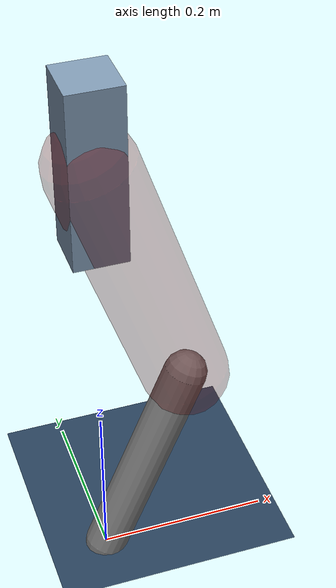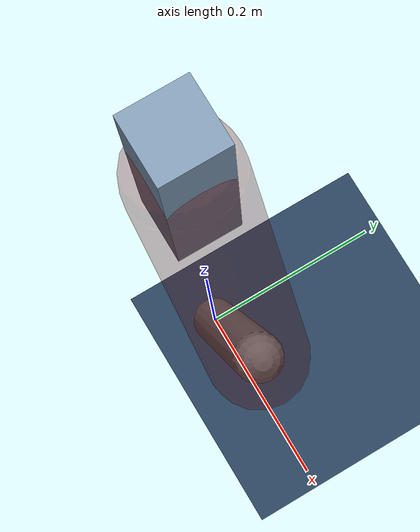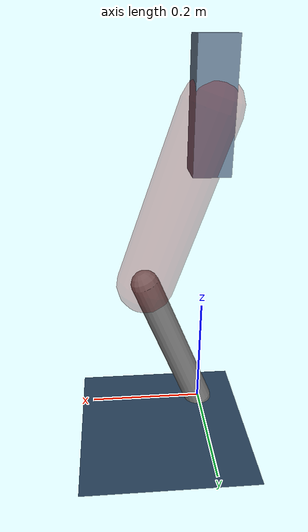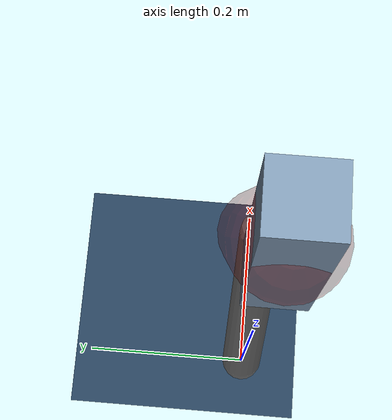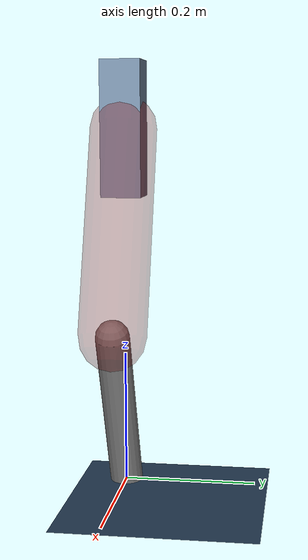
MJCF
<mujoco model="Hopper2D">
	<compiler inertiafromgeom="true" angle="radian" />
	<option timestep="0.001" integrator="implicit" cone="elliptic" solver="Newton" tolerance="1e-10" />

	<default>
		<geom contype="1" conaffinity="1" condim="3" friction="2 0.005 0.0001" solref="0.005 1" />
		<joint limited="true" damping="0.1" />
	</default>

	<asset>
		<texture name="skybox" type="skybox" builtin="gradient" rgb1=".4 .6 .8" rgb2="0 0 0" width="800" height="800" />
		<texture name="grid" type="2d" builtin="checker" rgb1=".1 .2 .3" rgb2=".2 .3 .4" width="300" height="300" mark="edge" markrgb=".2 .3 .4" />
		<material name="ground" texture="grid" texrepeat="1 1" texuniform="true" reflectance="0.1" />
		<material name="leg" rgba="0.5 0.6 0.7 1" />
	</asset>

	<worldbody>

		<geom name="floor" type="plane" size="5 5 0.25" material="ground" />

		<light directional="false" diffuse="0.8 0.8 0.8" specular="0.3 0.3 0.3" pos="0 0 2" dir="0 0 -1" />
		<light mode="targetbodycom" target="base" directional="false" diffuse="0.8 0.8 0.8" specular="0.3 0.3 0.3" pos="0 0 2" dir="0 0 -1" />

		<camera name="fixed" pos="0 -2 1" xyaxes="1 0 0 0 0 1" />
		<camera name="tracking" mode="trackcom" pos="0 -3 1" />

		<body name="root" pos="0 0 0.5414868881823411">
			<joint name="slide_x" type="slide" axis="1 0 0" range="-100 100" />
			<joint name="slide_z" type="slide" axis="0 0 1" range="0 10" />

			<body name="base" pos="0 0 0">
				<geom name="torso" type="box" size="0.03 0.03 0.1" mass="2.807" material="leg" />

				<body name="link1" pos="0 0 0" euler="0 1.2395883084141346 0">
					<joint type="hinge" axis="0 -1 0" pos="0 0 0" name="hinge1" limited="true" range="-3.14 3.14" stiffness="0" damping="0.1" />
					<geom name="thigh" type="capsule" fromto="0 0 0 0.31058073958866256 0 0" size="0.05" rgba="0.5 0 0 0.3" mass="1.017467996889389" />

					<body name="link2" pos="0.31058073958866256 0 0" euler="0 0.7182446057372232 0">
						<joint type="hinge" axis="0 -1 0" pos="0 0 0" name="hinge2" limited="true" range="-3.14 3.14" stiffness="0" damping="0.1" />
						<geom name="shank" type="capsule" fromto="0 0 0 0.2675784872296834 0 0" size="0.025" mass="0.4569627897837467" />

					</body>
				</body>
			</body>
		</body>
	</worldbody>

	<actuator>
		<motor name="torque1" joint="hinge1" ctrlrange="-64.87850375188388 64.87850375188388" ctrllimited="true" gear="1" />
		<motor name="torque2" joint="hinge2" ctrlrange="-204.67341023477425 204.67341023477425" ctrllimited="true" gear="1" />
	</actuator>
</mujoco>
